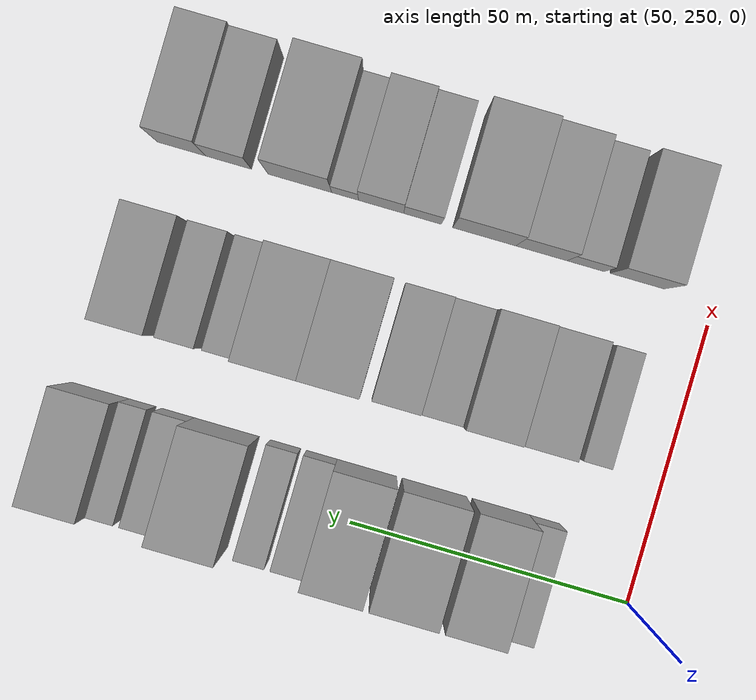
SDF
<sdf version="1.6">
 <world name="default">
  <model name="building_67">
   <static>1</static>
   <pose>50.0000 267.8796 0 0.000000 0.000000 0.000000</pose>
   <link name="link">
    <pose>0 0 6.00 0 0 0</pose>
    <collision name="collision"><geometry><box><size>20.0000 5.4477 12.0000</size></box></geometry></collision>
    <visual name="visual">
     <cast_shadows>0</cast_shadows>
     <geometry><box><size>20.0000 5.4477 12.0000</size></box></geometry>
     <material>
      <script>
       <uri>model://grey_wall/materials/scripts</uri>
       <uri>model://grey_wall/materials/textures</uri>
       <name>vrc/grey_wall</name>
      </script>
     </material>
    </visual>
   </link>
  </model>
  <model name="building_68">
   <static>1</static>
   <pose>50.0000 275.7543 0 0.000000 0.000000 0.000000</pose>
   <link name="link">
    <pose>0 0 12.00 0 0 0</pose>
    <collision name="collision"><geometry><box><size>20.0000 10.3018 24.0000</size></box></geometry></collision>
    <visual name="visual">
     <cast_shadows>0</cast_shadows>
     <geometry><box><size>20.0000 10.3018 24.0000</size></box></geometry>
     <material>
      <script>
       <uri>model://grey_wall/materials/scripts</uri>
       <uri>model://grey_wall/materials/textures</uri>
       <name>vrc/grey_wall</name>
      </script>
     </material>
    </visual>
   </link>
  </model>
  <model name="building_69">
   <static>1</static>
   <pose>50.0000 287.7118 0 0.000000 0.000000 0.000000</pose>
   <link name="link">
    <pose>0 0 12.00 0 0 0</pose>
    <collision name="collision"><geometry><box><size>20.0000 11.6133 24.0000</size></box></geometry></collision>
    <visual name="visual">
     <cast_shadows>0</cast_shadows>
     <geometry><box><size>20.0000 11.6133 24.0000</size></box></geometry>
     <material>
      <script>
       <uri>model://grey_wall/materials/scripts</uri>
       <uri>model://grey_wall/materials/textures</uri>
       <name>vrc/grey_wall</name>
      </script>
     </material>
    </visual>
   </link>
  </model>
  <model name="building_70">
   <static>1</static>
   <pose>50.0000 299.8496 0 0.000000 0.000000 0.000000</pose>
   <link name="link">
    <pose>0 0 12.00 0 0 0</pose>
    <collision name="collision"><geometry><box><size>20.0000 10.6623 24.0000</size></box></geometry></collision>
    <visual name="visual">
     <cast_shadows>0</cast_shadows>
     <geometry><box><size>20.0000 10.6623 24.0000</size></box></geometry>
     <material>
      <script>
       <uri>model://grey_wall/materials/scripts</uri>
       <uri>model://grey_wall/materials/textures</uri>
       <name>vrc/grey_wall</name>
      </script>
     </material>
    </visual>
   </link>
  </model>
  <model name="building_71">
   <static>1</static>
   <pose>50.0000 307.9464 0 0.000000 0.000000 0.000000</pose>
   <link name="link">
    <pose>0 0 6.00 0 0 0</pose>
    <collision name="collision"><geometry><box><size>20.0000 5.5313 12.0000</size></box></geometry></collision>
    <visual name="visual">
     <cast_shadows>0</cast_shadows>
     <geometry><box><size>20.0000 5.5313 12.0000</size></box></geometry>
     <material>
      <script>
       <uri>model://grey_wall/materials/scripts</uri>
       <uri>model://grey_wall/materials/textures</uri>
       <name>vrc/grey_wall</name>
      </script>
     </material>
    </visual>
   </link>
  </model>
  <model name="building_72">
   <static>1</static>
   <pose>50.0000 314.4449 0 0.000000 0.000000 0.000000</pose>
   <link name="link">
    <pose>0 0 6.00 0 0 0</pose>
    <collision name="collision"><geometry><box><size>20.0000 5.4656 12.0000</size></box></geometry></collision>
    <visual name="visual">
     <cast_shadows>0</cast_shadows>
     <geometry><box><size>20.0000 5.4656 12.0000</size></box></geometry>
     <material>
      <script>
       <uri>model://grey_wall/materials/scripts</uri>
       <uri>model://grey_wall/materials/textures</uri>
       <name>vrc/grey_wall</name>
      </script>
     </material>
    </visual>
   </link>
  </model>
  <model name="building_73">
   <static>1</static>
   <pose>50.0000 325.0570 0 0.000000 0.000000 0.000000</pose>
   <link name="link">
    <pose>0 0 12.00 0 0 0</pose>
    <collision name="collision"><geometry><box><size>20.0000 11.7587 24.0000</size></box></geometry></collision>
    <visual name="visual">
     <cast_shadows>0</cast_shadows>
     <geometry><box><size>20.0000 11.7587 24.0000</size></box></geometry>
     <material>
      <script>
       <uri>model://grey_wall/materials/scripts</uri>
       <uri>model://grey_wall/materials/textures</uri>
       <name>vrc/grey_wall</name>
      </script>
     </material>
    </visual>
   </link>
  </model>
  <model name="building_74">
   <static>1</static>
   <pose>50.0000 333.8588 0 0.000000 0.000000 0.000000</pose>
   <link name="link">
    <pose>0 0 6.00 0 0 0</pose>
    <collision name="collision"><geometry><box><size>20.0000 5.8449 12.0000</size></box></geometry></collision>
    <visual name="visual">
     <cast_shadows>0</cast_shadows>
     <geometry><box><size>20.0000 5.8449 12.0000</size></box></geometry>
     <material>
      <script>
       <uri>model://grey_wall/materials/scripts</uri>
       <uri>model://grey_wall/materials/textures</uri>
       <name>vrc/grey_wall</name>
      </script>
     </material>
    </visual>
   </link>
  </model>
  <model name="building_75">
   <static>1</static>
   <pose>50.0000 340.1945 0 0.000000 0.000000 0.000000</pose>
   <link name="link">
    <pose>0 0 6.00 0 0 0</pose>
    <collision name="collision"><geometry><box><size>20.0000 4.8264 12.0000</size></box></geometry></collision>
    <visual name="visual">
     <cast_shadows>0</cast_shadows>
     <geometry><box><size>20.0000 4.8264 12.0000</size></box></geometry>
     <material>
      <script>
       <uri>model://grey_wall/materials/scripts</uri>
       <uri>model://grey_wall/materials/textures</uri>
       <name>vrc/grey_wall</name>
      </script>
     </material>
    </visual>
   </link>
  </model>
  <model name="building_76">
   <static>1</static>
   <pose>50.0000 347.7923 0 0.000000 0.000000 0.000000</pose>
   <link name="link">
    <pose>0 0 10.50 0 0 0</pose>
    <collision name="collision"><geometry><box><size>20.0000 10.3693 21.0000</size></box></geometry></collision>
    <visual name="visual">
     <cast_shadows>0</cast_shadows>
     <geometry><box><size>20.0000 10.3693 21.0000</size></box></geometry>
     <material>
      <script>
       <uri>model://grey_wall/materials/scripts</uri>
       <uri>model://grey_wall/materials/textures</uri>
       <name>vrc/grey_wall</name>
      </script>
     </material>
    </visual>
   </link>
  </model>
  <model name="building_147">
   <static>1</static>
   <pose>82.0000 263.3292 0 0.000000 0.000000 0.000000</pose>
   <link name="link">
    <pose>0 0 6.00 0 0 0</pose>
    <collision name="collision"><geometry><box><size>20.0000 5.0087 12.0000</size></box></geometry></collision>
    <visual name="visual">
     <cast_shadows>0</cast_shadows>
     <geometry><box><size>20.0000 5.0087 12.0000</size></box></geometry>
     <material>
      <script>
       <uri>model://grey_wall/materials/scripts</uri>
       <uri>model://grey_wall/materials/textures</uri>
       <name>vrc/grey_wall</name>
      </script>
     </material>
    </visual>
   </link>
  </model>
  <model name="building_148">
   <static>1</static>
   <pose>82.0000 272.4831 0 0.000000 0.000000 0.000000</pose>
   <link name="link">
    <pose>0 0 10.50 0 0 0</pose>
    <collision name="collision"><geometry><box><size>20.0000 9.2991 21.0000</size></box></geometry></collision>
    <visual name="visual">
     <cast_shadows>0</cast_shadows>
     <geometry><box><size>20.0000 9.2991 21.0000</size></box></geometry>
     <material>
      <script>
       <uri>model://grey_wall/materials/scripts</uri>
       <uri>model://grey_wall/materials/textures</uri>
       <name>vrc/grey_wall</name>
      </script>
     </material>
    </visual>
   </link>
  </model>
  <model name="building_149">
   <static>1</static>
   <pose>82.0000 281.9372 0 0.000000 0.000000 0.000000</pose>
   <link name="link">
    <pose>0 0 12.00 0 0 0</pose>
    <collision name="collision"><geometry><box><size>20.0000 9.6090 24.0000</size></box></geometry></collision>
    <visual name="visual">
     <cast_shadows>0</cast_shadows>
     <geometry><box><size>20.0000 9.6090 24.0000</size></box></geometry>
     <material>
      <script>
       <uri>model://grey_wall/materials/scripts</uri>
       <uri>model://grey_wall/materials/textures</uri>
       <name>vrc/grey_wall</name>
      </script>
     </material>
    </visual>
   </link>
  </model>
  <model name="building_150">
   <static>1</static>
   <pose>82.0000 290.3462 0 0.000000 0.000000 0.000000</pose>
   <link name="link">
    <pose>0 0 7.50 0 0 0</pose>
    <collision name="collision"><geometry><box><size>20.0000 7.2090 15.0000</size></box></geometry></collision>
    <visual name="visual">
     <cast_shadows>0</cast_shadows>
     <geometry><box><size>20.0000 7.2090 15.0000</size></box></geometry>
     <material>
      <script>
       <uri>model://grey_wall/materials/scripts</uri>
       <uri>model://grey_wall/materials/textures</uri>
       <name>vrc/grey_wall</name>
      </script>
     </material>
    </visual>
   </link>
  </model>
  <model name="building_151">
   <static>1</static>
   <pose>82.0000 298.1655 0 0.000000 0.000000 0.000000</pose>
   <link name="link">
    <pose>0 0 9.00 0 0 0</pose>
    <collision name="collision"><geometry><box><size>20.0000 8.4296 18.0000</size></box></geometry></collision>
    <visual name="visual">
     <cast_shadows>0</cast_shadows>
     <geometry><box><size>20.0000 8.4296 18.0000</size></box></geometry>
     <material>
      <script>
       <uri>model://grey_wall/materials/scripts</uri>
       <uri>model://grey_wall/materials/textures</uri>
       <name>vrc/grey_wall</name>
      </script>
     </material>
    </visual>
   </link>
  </model>
  <model name="building_152">
   <static>1</static>
   <pose>82.0000 309.6269 0 0.000000 0.000000 0.000000</pose>
   <link name="link">
    <pose>0 0 12.00 0 0 0</pose>
    <collision name="collision"><geometry><box><size>20.0000 10.4932 24.0000</size></box></geometry></collision>
    <visual name="visual">
     <cast_shadows>0</cast_shadows>
     <geometry><box><size>20.0000 10.4932 24.0000</size></box></geometry>
     <material>
      <script>
       <uri>model://grey_wall/materials/scripts</uri>
       <uri>model://grey_wall/materials/textures</uri>
       <name>vrc/grey_wall</name>
      </script>
     </material>
    </visual>
   </link>
  </model>
  <model name="building_153">
   <static>1</static>
   <pose>82.0000 320.4143 0 0.000000 0.000000 0.000000</pose>
   <link name="link">
    <pose>0 0 12.00 0 0 0</pose>
    <collision name="collision"><geometry><box><size>20.0000 11.0817 24.0000</size></box></geometry></collision>
    <visual name="visual">
     <cast_shadows>0</cast_shadows>
     <geometry><box><size>20.0000 11.0817 24.0000</size></box></geometry>
     <material>
      <script>
       <uri>model://grey_wall/materials/scripts</uri>
       <uri>model://grey_wall/materials/textures</uri>
       <name>vrc/grey_wall</name>
      </script>
     </material>
    </visual>
   </link>
  </model>
  <model name="building_154">
   <static>1</static>
   <pose>82.0000 328.8820 0 0.000000 0.000000 0.000000</pose>
   <link name="link">
    <pose>0 0 6.00 0 0 0</pose>
    <collision name="collision"><geometry><box><size>20.0000 5.8536 12.0000</size></box></geometry></collision>
    <visual name="visual">
     <cast_shadows>0</cast_shadows>
     <geometry><box><size>20.0000 5.8536 12.0000</size></box></geometry>
     <material>
      <script>
       <uri>model://grey_wall/materials/scripts</uri>
       <uri>model://grey_wall/materials/textures</uri>
       <name>vrc/grey_wall</name>
      </script>
     </material>
    </visual>
   </link>
  </model>
  <model name="building_155">
   <static>1</static>
   <pose>82.0000 336.2053 0 0.000000 0.000000 0.000000</pose>
   <link name="link">
    <pose>0 0 7.50 0 0 0</pose>
    <collision name="collision"><geometry><box><size>20.0000 6.7929 15.0000</size></box></geometry></collision>
    <visual name="visual">
     <cast_shadows>0</cast_shadows>
     <geometry><box><size>20.0000 6.7929 15.0000</size></box></geometry>
     <material>
      <script>
       <uri>model://grey_wall/materials/scripts</uri>
       <uri>model://grey_wall/materials/textures</uri>
       <name>vrc/grey_wall</name>
      </script>
     </material>
    </visual>
   </link>
  </model>
  <model name="building_156">
   <static>1</static>
   <pose>82.0000 345.3758 0 0.000000 0.000000 0.000000</pose>
   <link name="link">
    <pose>0 0 10.50 0 0 0</pose>
    <collision name="collision"><geometry><box><size>20.0000 9.5482 21.0000</size></box></geometry></collision>
    <visual name="visual">
     <cast_shadows>0</cast_shadows>
     <geometry><box><size>20.0000 9.5482 21.0000</size></box></geometry>
     <material>
      <script>
       <uri>model://grey_wall/materials/scripts</uri>
       <uri>model://grey_wall/materials/textures</uri>
       <name>vrc/grey_wall</name>
      </script>
     </material>
    </visual>
   </link>
  </model>
  <model name="building_226">
   <static>1</static>
   <pose>114.0000 263.9833 0 0.000000 0.000000 0.000000</pose>
   <link name="link">
    <pose>0 0 10.50 0 0 0</pose>
    <collision name="collision"><geometry><box><size>20.0000 9.7663 21.0000</size></box></geometry></collision>
    <visual name="visual">
     <cast_shadows>0</cast_shadows>
     <geometry><box><size>20.0000 9.7663 21.0000</size></box></geometry>
     <material>
      <script>
       <uri>model://grey_wall/materials/scripts</uri>
       <uri>model://grey_wall/materials/textures</uri>
       <name>vrc/grey_wall</name>
      </script>
     </material>
    </visual>
   </link>
  </model>
  <model name="building_227">
   <static>1</static>
   <pose>114.0000 273.2324 0 0.000000 0.000000 0.000000</pose>
   <link name="link">
    <pose>0 0 7.50 0 0 0</pose>
    <collision name="collision"><geometry><box><size>20.0000 6.7320 15.0000</size></box></geometry></collision>
    <visual name="visual">
     <cast_shadows>0</cast_shadows>
     <geometry><box><size>20.0000 6.7320 15.0000</size></box></geometry>
     <material>
      <script>
       <uri>model://grey_wall/materials/scripts</uri>
       <uri>model://grey_wall/materials/textures</uri>
       <name>vrc/grey_wall</name>
      </script>
     </material>
    </visual>
   </link>
  </model>
  <model name="building_228">
   <static>1</static>
   <pose>114.0000 281.2004 0 0.000000 0.000000 0.000000</pose>
   <link name="link">
    <pose>0 0 10.50 0 0 0</pose>
    <collision name="collision"><geometry><box><size>20.0000 9.2039 21.0000</size></box></geometry></collision>
    <visual name="visual">
     <cast_shadows>0</cast_shadows>
     <geometry><box><size>20.0000 9.2039 21.0000</size></box></geometry>
     <material>
      <script>
       <uri>model://grey_wall/materials/scripts</uri>
       <uri>model://grey_wall/materials/textures</uri>
       <name>vrc/grey_wall</name>
      </script>
     </material>
    </visual>
   </link>
  </model>
  <model name="building_229">
   <static>1</static>
   <pose>114.0000 291.5006 0 0.000000 0.000000 0.000000</pose>
   <link name="link">
    <pose>0 0 12.00 0 0 0</pose>
    <collision name="collision"><geometry><box><size>20.0000 11.3964 24.0000</size></box></geometry></collision>
    <visual name="visual">
     <cast_shadows>0</cast_shadows>
     <geometry><box><size>20.0000 11.3964 24.0000</size></box></geometry>
     <material>
      <script>
       <uri>model://grey_wall/materials/scripts</uri>
       <uri>model://grey_wall/materials/textures</uri>
       <name>vrc/grey_wall</name>
      </script>
     </material>
    </visual>
   </link>
  </model>
  <model name="building_230">
   <static>1</static>
   <pose>114.0000 302.5957 0 0.000000 0.000000 0.000000</pose>
   <link name="link">
    <pose>0 0 7.50 0 0 0</pose>
    <collision name="collision"><geometry><box><size>20.0000 6.7938 15.0000</size></box></geometry></collision>
    <visual name="visual">
     <cast_shadows>0</cast_shadows>
     <geometry><box><size>20.0000 6.7938 15.0000</size></box></geometry>
     <material>
      <script>
       <uri>model://grey_wall/materials/scripts</uri>
       <uri>model://grey_wall/materials/textures</uri>
       <name>vrc/grey_wall</name>
      </script>
     </material>
    </visual>
   </link>
  </model>
  <model name="building_231">
   <static>1</static>
   <pose>114.0000 310.0498 0 0.000000 0.000000 0.000000</pose>
   <link name="link">
    <pose>0 0 9.00 0 0 0</pose>
    <collision name="collision"><geometry><box><size>20.0000 8.1143 18.0000</size></box></geometry></collision>
    <visual name="visual">
     <cast_shadows>0</cast_shadows>
     <geometry><box><size>20.0000 8.1143 18.0000</size></box></geometry>
     <material>
      <script>
       <uri>model://grey_wall/materials/scripts</uri>
       <uri>model://grey_wall/materials/textures</uri>
       <name>vrc/grey_wall</name>
      </script>
     </material>
    </visual>
   </link>
  </model>
  <model name="building_232">
   <static>1</static>
   <pose>114.0000 316.5169 0 0.000000 0.000000 0.000000</pose>
   <link name="link">
    <pose>0 0 6.00 0 0 0</pose>
    <collision name="collision"><geometry><box><size>20.0000 4.8200 12.0000</size></box></geometry></collision>
    <visual name="visual">
     <cast_shadows>0</cast_shadows>
     <geometry><box><size>20.0000 4.8200 12.0000</size></box></geometry>
     <material>
      <script>
       <uri>model://grey_wall/materials/scripts</uri>
       <uri>model://grey_wall/materials/textures</uri>
       <name>vrc/grey_wall</name>
      </script>
     </material>
    </visual>
   </link>
  </model>
  <model name="building_233">
   <static>1</static>
   <pose>114.0000 324.6532 0 0.000000 0.000000 0.000000</pose>
   <link name="link">
    <pose>0 0 12.00 0 0 0</pose>
    <collision name="collision"><geometry><box><size>20.0000 11.4526 24.0000</size></box></geometry></collision>
    <visual name="visual">
     <cast_shadows>0</cast_shadows>
     <geometry><box><size>20.0000 11.4526 24.0000</size></box></geometry>
     <material>
      <script>
       <uri>model://grey_wall/materials/scripts</uri>
       <uri>model://grey_wall/materials/textures</uri>
       <name>vrc/grey_wall</name>
      </script>
     </material>
    </visual>
   </link>
  </model>
  <model name="building_234">
   <static>1</static>
   <pose>114.0000 337.4772 0 0.000000 0.000000 0.000000</pose>
   <link name="link">
    <pose>0 0 9.00 0 0 0</pose>
    <collision name="collision"><geometry><box><size>20.0000 8.1954 18.0000</size></box></geometry></collision>
    <visual name="visual">
     <cast_shadows>0</cast_shadows>
     <geometry><box><size>20.0000 8.1954 18.0000</size></box></geometry>
     <material>
      <script>
       <uri>model://grey_wall/materials/scripts</uri>
       <uri>model://grey_wall/materials/textures</uri>
       <name>vrc/grey_wall</name>
      </script>
     </material>
    </visual>
   </link>
  </model>
  <model name="building_235">
   <static>1</static>
   <pose>114.0000 345.9372 0 0.000000 0.000000 0.000000</pose>
   <link name="link">
    <pose>0 0 10.50 0 0 0</pose>
    <collision name="collision"><geometry><box><size>20.0000 8.7246 21.0000</size></box></geometry></collision>
    <visual name="visual">
     <cast_shadows>0</cast_shadows>
     <geometry><box><size>20.0000 8.7246 21.0000</size></box></geometry>
     <material>
      <script>
       <uri>model://grey_wall/materials/scripts</uri>
       <uri>model://grey_wall/materials/textures</uri>
       <name>vrc/grey_wall</name>
      </script>
     </material>
    </visual>
   </link>
  </model>
 </world>
</sdf>
